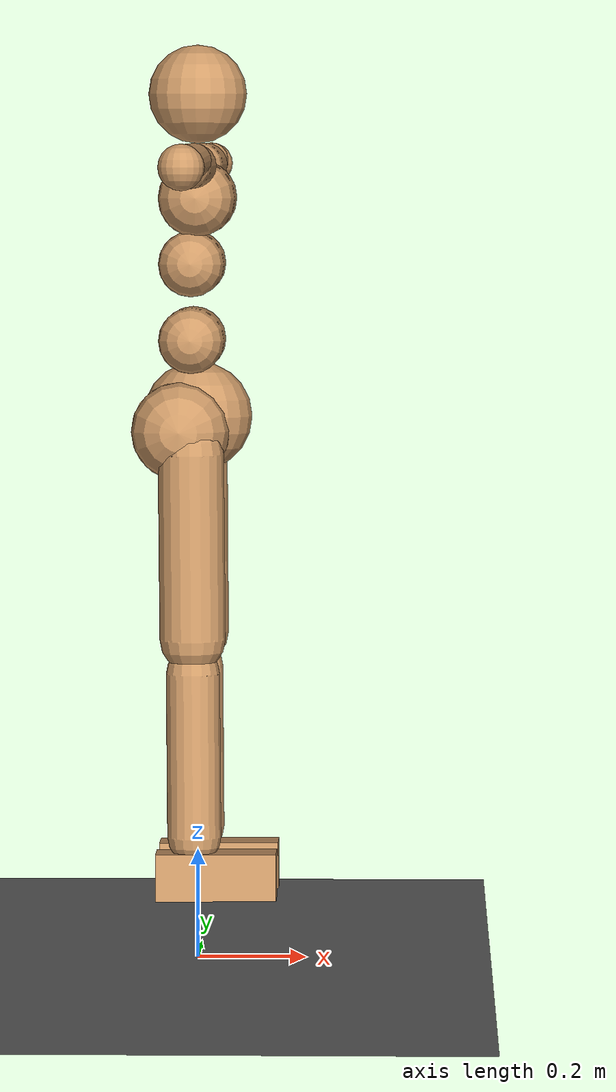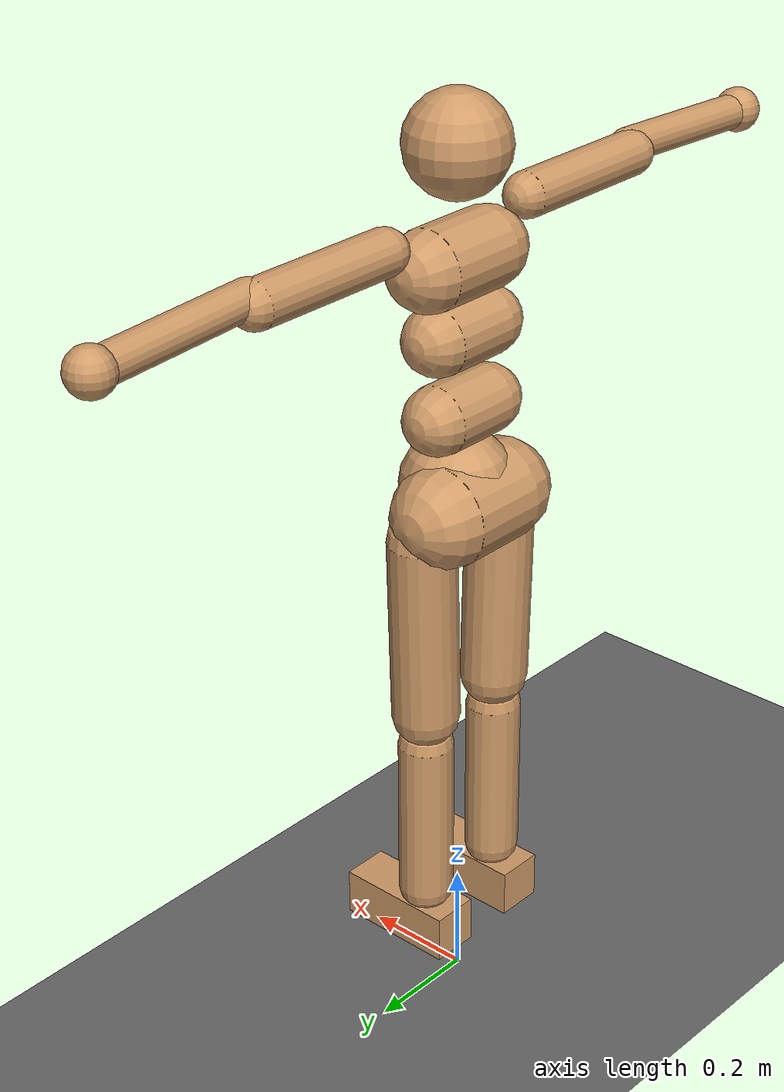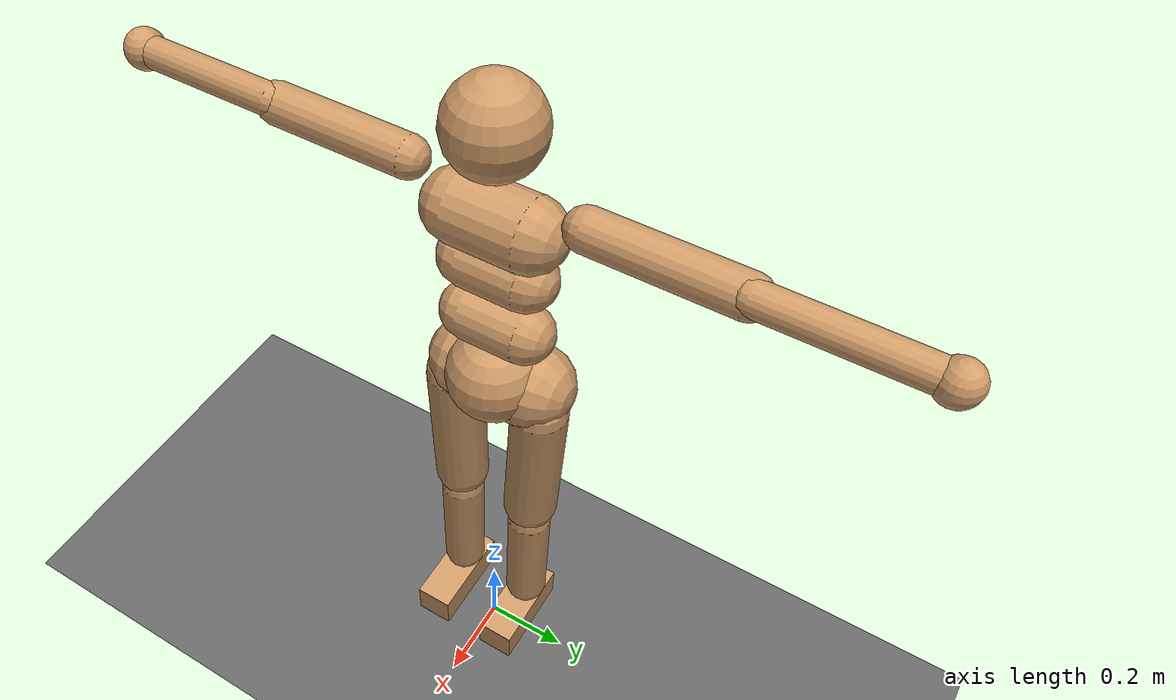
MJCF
<mujoco model="alfredo">

    <compiler angle="degree" inertiafromgeom="true" />

    <default>
        <joint armature="1" damping="1" limited="true" />
        <geom conaffinity="0" condim="1" contype="0" material="geom" />
        <motor ctrllimited="true" ctrlrange="-.4 .4" />
    </default>

    <option iterations="8" timestep="0.003" />

    <custom>

        <numeric data="2500" name="constraint_limit_stiffness" />
        <numeric data="27000" name="constraint_stiffness" />
        <numeric data="30" name="constraint_ang_damping" />
        <numeric data="80" name="constraint_vel_damping" />
        <numeric data="-0.05" name="ang_damping" />
        <numeric data="0.5" name="joint_scale_pos" />
        <numeric data="0.1" name="joint_scale_ang" />
        <numeric data="0" name="spring_mass_scale" />
        <numeric data="1" name="spring_inertia_scale" />
        <numeric data="20" name="matrix_inv_iterations" />
        <numeric data="15" name="solver_maxls" />
    </custom>

    <size nkey="5" nuser_geom="1" />

    <visual>
        <map fogend="5" fogstart="3" />
    </visual>

    <asset>
        <texture builtin="gradient" height="100" rgb1=".4 .5 .6" rgb2="0 0 0" type="skybox" width="100" />

        <texture builtin="flat" height="1278" mark="cross" markrgb="1 1 1" name="texgeom" random="0.01" rgb1="0.8 0.6 0.4" rgb2="0.8 0.6 0.4" type="cube" width="127" />
        <texture builtin="checker" height="100" name="texplane" rgb1="0 0 0" rgb2="0.8 0.8 0.8" type="2d" width="100" />
        <material name="MatPlane" reflectance="0.5" shininess="1" specular="1" texrepeat="60 60" texture="texplane" />
        <material name="geom" texture="texgeom" texuniform="true" />
    </asset>

    <worldbody>
        <light cutoff="100" diffuse="1 1 1" dir="-0 0 -1.3" directional="true" exponent="1" pos="0 0 1.3" specular=".1 .1 .1" />
        <geom conaffinity="1" condim="3" friction="1 .1 .1" material="MatPlane" name="floor" pos="0 0 0" size="20 20 0.125" type="plane" />

        <body name="alfredo" pos="0 0 1.4">
            <camera name="followme" mode="trackcom" pos="0 -4 0" xyaxes="1 0 0 0 0 1" />

            <joint armature="0" damping="0" limited="false" name="root" pos="0 0 0" stiffness="0" type="free" />
            <geom fromto="0 -.07 0 0 .07 0" name="torso1" size="0.07" type="capsule" />
            <geom name="head" pos="0 0 .19" size=".09" type="sphere" user="258" />
            <geom fromto="-.01 -.06 -.12 -.01 .06 -.12" name="uwaist" size="0.06" type="capsule" />

            <body name="upper_arm_r" pos="0 -0.17 0.06">
                <joint armature="0.0068" axis="-1 0 0" name="shoulder_1_r" pos="0 0 0" range="-75 85" stiffness="1" type="hinge" />
                <joint armature="0.0051" axis="0 0 -1" name="shoulder_2_r" pos="0 0 0" range="-60 85" stiffness="1" type="hinge" />
                <geom fromto="0 0 0 0 -.277 0" name="triceps_r" size="0.04 0.16" type="capsule" />

                <body name="lower_arm_r" pos="0 -.29 0">
                    <joint armature="0.0028" axis="0 0 1" name="elbow_r" pos="0 0 0" range="-90 10" stiffness="0" type="hinge" />
                    <geom fromto="0.01 0.01 0.01 0 -.295 0" name="forearm_r" size="0.031" type="capsule" />
                    <geom contype="1" name="gripper_r" pos="0.0 -.3 0.0" size="0.04" type="sphere" />
                    <camera pos="0 0 0" />
                </body>
            </body>

            <body name="upper_arm_l" pos="0 0.17 0.06">
                <joint armature="0.0068" axis="1 0 0" name="shoulder_1_l" pos="0 0 0" range="-75 85" stiffness="1" type="hinge" />
                <joint armature="0.0051" axis="0 0 1" name="shoulder_2_l" pos="0 0 0" range="-60 85" stiffness="1" type="hinge" />
                <geom fromto="0 0 0 0 .277 0" name="triceps_l" size="0.04 0.16" type="capsule" />

                <body name="lower_arm_l" pos="0 .29 0">
                    <joint armature="0.0028" axis="0 0 -1" name="elbow_l" pos="0 0 0" range="-90 10" stiffness="0" type="hinge" />
                    <geom fromto="0.01 -0.01 0.01 0 .295 0" name="forearm_l" size="0.031" type="capsule" />
                    <geom contype="1" name="gripper_l" pos="0.0 0.3 0.0" size="0.04" type="sphere" />
                </body>
            </body>

            <body name="lwaist" pos="-.01 0 -0.260" quat="1.000 0 -0.002 0">
                <geom fromto="0 -.06 0 0 .06 0" name="lw" size="0.06" type="capsule" />
                <joint armature="0.02" axis="0 0 1" damping="5" name="ab_z" pos="0 0 0.065" range="-45 45" stiffness="20" type="hinge" />
                <joint armature="0.02" axis="0 1 0" damping="5" name="ab_y" pos="0 0 0.065" range="-75 30" stiffness="10" type="hinge" />

                <body name="pelv" pos="0 0 -0.165" quat="1.000 0 -0.002 0">
                    <joint armature="0.02" axis="1 0 0" damping="5" name="ab_x" pos="0 0 0.1" range="-35 35" stiffness="10" type="hinge" />
                    <geom fromto="-.02 -.07 0 -.02 .07 0" name="booty" size="0.09" type="capsule" />

                    <body name="thigh_r" pos="0 -0.1 -0.04">
                        <joint armature="0.01" axis="1 0 0" damping="5" name="hip_r_x" pos="0 0 0" range="-25 5" stiffness="10" type="hinge" />
                        <joint armature="0.01" axis="0 0 1" damping="5" name="hip_r_z" pos="0 0 0" range="-60 35" stiffness="10" type="hinge" />
                        <joint armature="0.0080" axis="0 1 0" damping="5" name="hip_r_y" pos="0 0 0" range="-110 20" stiffness="20" type="hinge" />
                        <geom fromto="0 0 0 0 0.01 -.34" name="right_thigh1" size="0.06" type="capsule" />

                        <body name="shin_r" pos="0 0.01 -0.403">
                            <joint armature="0.0060" axis="0 -1 0" name="knee_r" pos="0 0 .02" range="-160 -2" type="hinge" />
                            <geom fromto="0 0 0 0 0 -.3" name="calves_r" size="0.049" type="capsule" />

                            <body name="foot_r" pos="0 0 -0.37">
                                <joint armature="0.006" axis="0 -1 0" name="ankle_r" pos="0 0 0" range="-45 20" type="hinge" />
                                <geom contype="1" fromto="-0.07 0 0 0.150 0 0" name="footm_r" size="0.042983" type="box" user="0" density="200" />
                            </body>
                        </body>
                    </body>

                    <body name="thigh_l" pos="0 0.1 -0.04">
                        <joint armature="0.01" axis="-1 0 0" damping="5" name="hip_l_x" pos="0 0 0" range="-25 5" stiffness="10" type="hinge" />
                        <joint armature="0.01" axis="0 0 -1" damping="5" name="hip_l_z" pos="0 0 0" range="-60 35" stiffness="10" type="hinge" />
                        <joint armature="0.01" axis="0 1 0" damping="5" name="hip_l_y" pos="0 0 0" range="-110 20" stiffness="20" type="hinge" />
                        <geom fromto="0 0 0 0 -0.01 -.34" name="quad_l" size="0.06" type="capsule" />

                        <body name="shin_l" pos="0 -0.01 -0.403">
                            <joint armature="0.0060" axis="0 -1 0" name="knee_l" pos="0 0 .02" range="-160 -2" stiffness="1" type="hinge" />
                            <geom fromto="0 0 0 0 0 -.3" name="calves_l" size="0.049" type="capsule" />

                            <body name="foot_l" pos="0 0 -0.37">
                                <joint armature="0.006" axis="0 -1 0" name="ankle_l" pos="0 0 0" range="-45 20" type="hinge" />
                                <geom contype="1" fromto="-0.07 0 0 0.150 0 0" name="footm_l" size="0.042983" type="box" user="0" density="200"/>
                            </body>
                        </body>
                    </body>
                </body>
            </body>
        </body>

        <!-- Target -->
        <body name="target" pos="0 0 1.0">
			<!-- The joint `ref` attributes are removed for brax. -->
            <joint armature="0" axis="1 0 0" damping="0" limited="true" name="target_x" pos="0 0 0" range="-100.0 100.0" stiffness="0" type="slide"/>
            <joint armature="0" axis="0 1 0" damping="0" limited="true" name="target_y" pos="0 0 0" range="-100.0 100.0" stiffness="0" type="slide"/>
			<geom conaffinity="0" contype="0" name="target" pos="0 0 0" size=".1" type="sphere"/>
		</body>

    </worldbody>

    <actuator>

        <motor gear="100" joint="ab_y" name="ab_y" />
        <motor gear="100" joint="ab_z" name="ab_z" />
        <motor gear="100" joint="ab_x" name="ab_x" />
        <motor gear="100" joint="hip_r_x" name="hip_r_x" />
        <motor gear="100" joint="hip_r_z" name="hip_r_z" />
        <motor gear="300" joint="hip_r_y" name="hip_r_y" />
        <motor gear="200" joint="knee_r" name="knee_r" />
        <motor gear="200" joint="ankle_r" name="ankle_r" />
        <motor gear="100" joint="hip_l_x" name="hip_l_x" />
        <motor gear="100" joint="hip_l_z" name="hip_l_z" />
        <motor gear="300" joint="hip_l_y" name="hip_l_y" />
        <motor gear="200" joint="knee_l" name="knee_l" />
        <motor gear="200" joint="ankle_l" name="ankle_l" />
        <motor gear="25" joint="shoulder_1_r" name="shoulder_1_r" />
        <motor gear="25" joint="shoulder_2_r" name="shoulder_2_r" />
        <motor gear="25" joint="elbow_r" name="elbow_r" />
        <motor gear="25" joint="shoulder_1_l" name="shoulder_1_l" />
        <motor gear="25" joint="shoulder_2_l" name="shoulder_2_l" />
        <motor gear="25" joint="elbow_l" name="elbow_l" />

    </actuator>

</mujoco>
